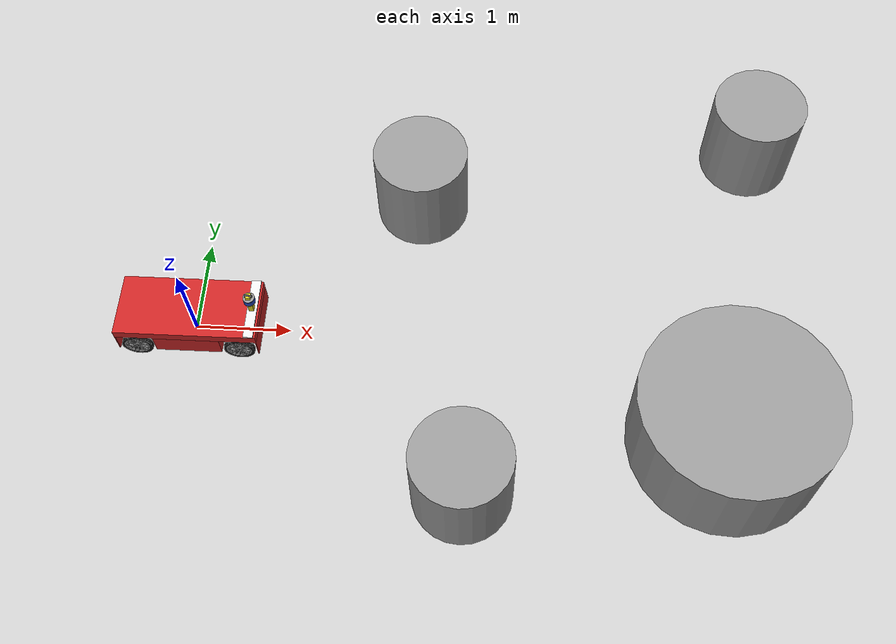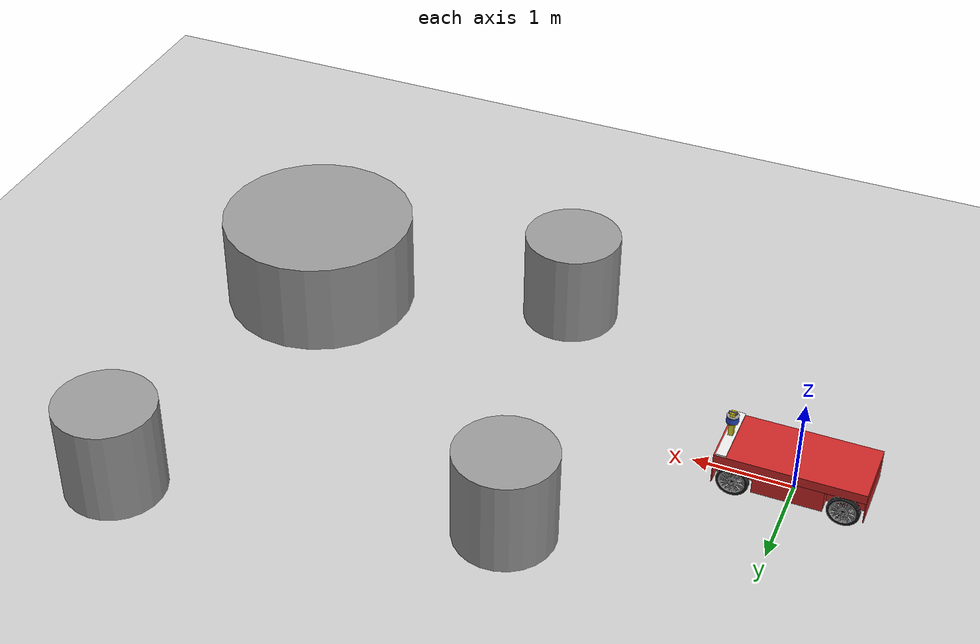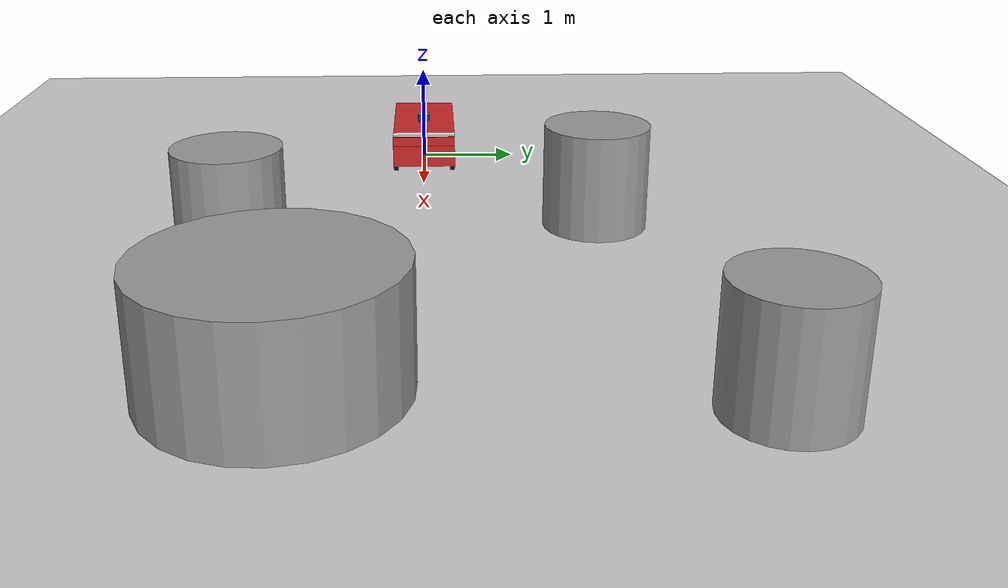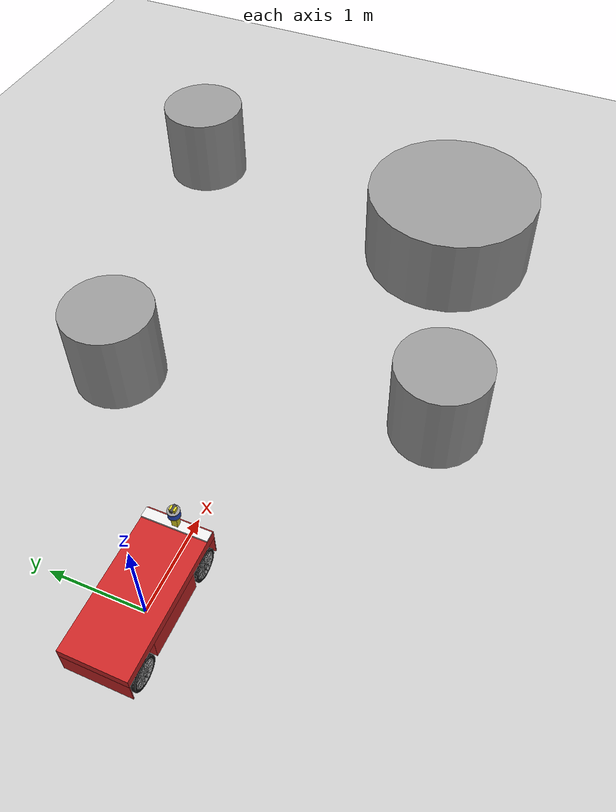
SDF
<sdf version="1.7">
 <world name="default">
  <model name="ground_plane">
   <static>1</static>
   <link name="link">
    <collision name="collision">
     <geometry><plane><normal>0 0 1</normal><size>100 100</size></plane></geometry>
     <surface><friction><ode><mu>100</mu><mu2>50</mu2></ode></friction></surface>
    </collision>
    <visual name="visual">
     <cast_shadows>0</cast_shadows>
     <geometry><plane><normal>0 0 1</normal><size>100 100</size></plane></geometry>
     <material>
      <script><uri>file://media/materials/scripts/gazebo.material</uri><name>Gazebo/Grey</name></script>
     </material>
    </visual>
   </link>
  </model>
  <model name="unit_cylinder_1">
   <pose>2.90528 -1.73743 0.499998 3e-06 -2e-06 0</pose>
   <link name="link">
    <inertial>
     <mass>1</mass>
     <inertia><ixx>0.145833</ixx><ixy>0</ixy><ixz>0</ixz><iyy>0.145833</iyy><iyz>0</iyz><izz>0.125</izz></inertia>
    </inertial>
    <collision name="collision">
     <geometry><cylinder><radius>0.5</radius><length>1</length></cylinder></geometry>
    </collision>
    <visual name="visual">
     <geometry><cylinder><radius>0.5</radius><length>1</length></cylinder></geometry>
     <material>
      <script><name>Gazebo/Grey</name><uri>file://media/materials/scripts/gazebo.material</uri></script>
     </material>
    </visual>
   </link>
  </model>
  <model name="unit_cylinder_1_clone_2">
   <pose>2.29461 1.65197 0.499991 0 -0 3.07831</pose>
   <link name="link">
    <inertial>
     <mass>1</mass>
     <inertia><ixx>0.145833</ixx><ixy>0</ixy><ixz>0</ixz><iyy>0.145833</iyy><iyz>0</iyz><izz>0.125</izz></inertia>
    </inertial>
    <collision name="collision">
     <geometry><cylinder><radius>0.5</radius><length>1</length></cylinder></geometry>
    </collision>
    <visual name="visual">
     <geometry><cylinder><radius>0.5</radius><length>1</length></cylinder></geometry>
     <material>
      <script><name>Gazebo/Grey</name><uri>file://media/materials/scripts/gazebo.material</uri></script>
     </material>
    </visual>
   </link>
  </model>
  <model name="unit_cylinder_1m_clone">
   <link name="link">
    <inertial>
     <mass>1</mass>
     <inertia><ixx>0.145833</ixx><ixy>0</ixy><ixz>0</ixz><iyy>0.145833</iyy><iyz>0</iyz><izz>0.125</izz></inertia>
    </inertial>
    <visual name="visual">
     <geometry><cylinder><radius>1</radius><length>1</length></cylinder></geometry>
     <material>
      <script><name>Gazebo/Grey</name><uri>file://media/materials/scripts/gazebo.material</uri></script>
      <shader type="pixel"><normal_map>__default__</normal_map></shader>
      <ambient>0.3 0.3 0.3 1</ambient>
      <diffuse>0.7 0.7 0.7 1</diffuse>
      <specular>0.01 0.01 0.01 1</specular>
      <emissive>0 0 0 1</emissive>
     </material>
    </visual>
    <collision name="collision">
     <geometry><cylinder><radius>1</radius><length>1</length></cylinder></geometry>
     <surface>
      <friction>
       <ode><mu>1</mu><mu2>1</mu2><fdir1>0 0 0</fdir1><slip1>0</slip1><slip2>0</slip2></ode>
       <torsional>
        <coefficient>1</coefficient>
        <patch_radius>0</patch_radius>
        <surface_radius>0</surface_radius>
        <use_patch_radius>1</use_patch_radius>
        <ode><slip>0</slip></ode>
       </torsional>
      </friction>
      <bounce><restitution_coefficient>0</restitution_coefficient><threshold>1e+06</threshold></bounce>
      <contact>
       <collide_without_contact>0</collide_without_contact>
       <collide_without_contact_bitmask>1</collide_without_contact_bitmask>
       <collide_bitmask>1</collide_bitmask>
       <ode>
        <soft_cfm>0</soft_cfm>
        <soft_erp>0.2</soft_erp>
        <kp>1e+13</kp>
        <kd>1</kd>
        <max_vel>0.01</max_vel>
        <min_depth>0</min_depth>
       </ode>
       <bullet>
        <split_impulse>1</split_impulse>
        <split_impulse_penetration_threshold>-0.01</split_impulse_penetration_threshold>
        <soft_cfm>0</soft_cfm>
        <soft_erp>0.2</soft_erp>
        <kp>1e+13</kp>
        <kd>1</kd>
       </bullet>
      </contact>
     </surface>
    </collision>
   </link>
   <static>0</static>
   <pose>5.50402 -1.03445 0.499995 -5e-06 5e-06 0.065608</pose>
  </model>
  <model name="unit_cylinder">
   <pose>5.93292 2.47551 0.499996 3e-06 1e-06 -0</pose>
   <link name="link">
    <inertial>
     <mass>1</mass>
     <inertia><ixx>0.145833</ixx><ixy>0</ixy><ixz>0</ixz><iyy>0.145833</iyy><iyz>0</iyz><izz>0.125</izz></inertia>
    </inertial>
    <collision name="collision">
     <geometry><cylinder><radius>0.5</radius><length>1</length></cylinder></geometry>
    </collision>
    <visual name="visual">
     <geometry><cylinder><radius>0.5</radius><length>1</length></cylinder></geometry>
     <material>
      <script><name>Gazebo/Grey</name><uri>file://media/materials/scripts/gazebo.material</uri></script>
     </material>
    </visual>
   </link>
  </model>
  <model name="mobile_base">
   <link name="simulation_car_center">
    <inertial>
     <pose>0.010175 0 0.010123 0 -0 0</pose>
     <mass>973</mass>
     <inertia>
      <ixx>32.4325</ixx>
      <ixy>0.01</ixy>
      <ixz>-6.39078</ixz>
      <iyy>114.856</iyy>
      <iyz>0</iyz>
      <izz>124.473</izz>
     </inertia>
    </inertial>
    <collision name="simulation_car_center_fixed_joint_lump__base_1_collision">
     <pose>0 0 0.215 0 -0 0</pose>
     <geometry><box><size>1.3 0.4 0.23</size></box></geometry>
    </collision>
    <collision name="simulation_car_center_fixed_joint_lump__gazebo_camera_link_collision_1">
     <pose>0.66 0 0.7 3.14159 1.57079 3.14159</pose>
     <geometry><cylinder><length>0.08</length><radius>0.015</radius></cylinder></geometry>
    </collision>
    <collision name="simulation_car_center_fixed_joint_lump__rsliadr_middle_collision_2">
     <pose>0.66 0 0.635 0 -0 0</pose>
     <geometry><cylinder><length>0.06</length><radius>0.06</radius></cylinder></geometry>
    </collision>
    <collision name="simulation_car_center_fixed_joint_lump__lidar_top_collision_3">
     <pose>0.66 0 0.67 0 -0 0</pose>
     <geometry><cylinder><length>0.01</length><radius>0.06</radius></cylinder></geometry>
    </collision>
    <collision name="simulation_car_center_fixed_joint_lump__lidar_down_collision_4">
     <pose>0.66 0 0.6 0 -0 0</pose>
     <geometry><cylinder><length>0.01</length><radius>0.06</radius></cylinder></geometry>
    </collision>
    <visual name="simulation_car_center_visual">
     <pose>0 0 0.215 0 -0 0</pose>
     <geometry><box><size>0.68 0.67 0.23</size></box></geometry>
     <material>
      <script><name>Gazebo/Red</name><uri>file://media/materials/scripts/gazebo.material</uri></script>
     </material>
    </visual>
    <visual name="simulation_car_center_visual_1">
     <pose>0.53 0 0.215 0 -0 0</pose>
     <geometry><box><size>0.38 0.35 0.23</size></box></geometry>
     <material>
      <script><name>Gazebo/Red</name><uri>file://media/materials/scripts/gazebo.material</uri></script>
     </material>
    </visual>
    <visual name="simulation_car_center_visual_2">
     <pose>-0.53 0 0.215 0 -0 0</pose>
     <geometry><box><size>0.38 0.35 0.23</size></box></geometry>
     <material>
      <script><name>Gazebo/Red</name><uri>file://media/materials/scripts/gazebo.material</uri></script>
     </material>
    </visual>
    <visual name="simulation_car_center_visual_3">
     <pose>-0.725 0 0.215 0 -0 0</pose>
     <geometry><box><size>0.01 0.67 0.23</size></box></geometry>
     <material>
      <script><name>Gazebo/Red</name><uri>file://media/materials/scripts/gazebo.material</uri></script>
     </material>
    </visual>
    <visual name="simulation_car_center_visual_4">
     <pose>-0.725 0 0.215 0 -0 0</pose>
     <geometry><box><size>0.01 0.67 0.23</size></box></geometry>
     <material>
      <script><name>Gazebo/Red</name><uri>file://media/materials/scripts/gazebo.material</uri></script>
     </material>
    </visual>
    <visual name="simulation_car_center_visual_5">
     <pose>0 0 0.38 0 -0 0</pose>
     <geometry><box><size>1.46 0.67 0.1</size></box></geometry>
     <material>
      <script><name>Gazebo/Red</name><uri>file://media/materials/scripts/gazebo.material</uri></script>
     </material>
    </visual>
    <visual name="simulation_car_center_visual_6">
     <pose>0.725 0 0.215 0 -0 0</pose>
     <geometry><box><size>0.01 0.67 0.23</size></box></geometry>
     <material>
      <script><name>Gazebo/Red</name><uri>file://media/materials/scripts/gazebo.material</uri></script>
     </material>
    </visual>
    <visual name="simulation_car_center_fixed_joint_lump__gazebo_camera_link_visual_7">
     <pose>0.66 0 0.7 3.14159 1.57079 3.14159</pose>
     <geometry><cylinder><length>0.08</length><radius>0.015</radius></cylinder></geometry>
     <material>
      <script><name>Gazebo/DarkGrey</name><uri>file://media/materials/scripts/gazebo.material</uri></script>
     </material>
    </visual>
    <visual name="simulation_car_center_fixed_joint_lump__gazebo_lidar_visual_8">
     <pose>0.66 0 0.635 0 -0 0</pose>
     <geometry><cylinder><length>0.06</length><radius>0.06</radius></cylinder></geometry>
     <material>
      <script><name>Gazebo/Blue</name><uri>file://media/materials/scripts/gazebo.material</uri></script>
     </material>
    </visual>
    <visual name="simulation_car_center_fixed_joint_lump__lidar_top_base_visual_9">
     <pose>0.66 0 0.67 0 -0 0</pose>
     <geometry><cylinder><length>0.01</length><radius>0.06</radius></cylinder></geometry>
     <material>
      <script><name>Gazebo/Grey</name><uri>file://media/materials/scripts/gazebo.material</uri></script>
     </material>
    </visual>
    <visual name="simulation_car_center_fixed_joint_lump__lidar_top_base_visual_10">
     <pose>0.66 0 0.6 0 -0 0</pose>
     <geometry><cylinder><length>0.01</length><radius>0.06</radius></cylinder></geometry>
     <material>
      <script><name>Gazebo/Grey</name><uri>file://media/materials/scripts/gazebo.material</uri></script>
     </material>
    </visual>
    <visual name="simulation_car_center_fixed_joint_lump__sensor_link_visual_11">
     <pose>0.66 0 0.57 0 -0 0</pose>
     <geometry><box><size>0.05 0.06 0.28</size></box></geometry>
     <material>
      <script><name>Gazebo/Yellow</name><uri>file://media/materials/scripts/gazebo.material</uri></script>
     </material>
    </visual>
    <visual name="simulation_car_center_fixed_joint_lump__show_front_link_visual_12">
     <pose>0.66 0 0.44 0 -0 0</pose>
     <geometry><box><size>0.1 0.67 0.02</size></box></geometry>
     <material>
      <script><name>Gazebo/White</name><uri>file://media/materials/scripts/gazebo.material</uri></script>
     </material>
    </visual>
    <sensor name="gazebo_ros_head_hokuyo_sensor" type="gpu_ray">
     <visualize>0</visualize>
     <update_rate>20</update_rate>
     <ray>
      <scan>
       <horizontal>
        <samples>2880</samples>
        <resolution>1</resolution>
        <min_angle>-3.14159</min_angle>
        <max_angle>3.14159</max_angle>
       </horizontal>
       <vertical>
        <samples>32</samples>
        <resolution>1</resolution>
        <min_angle>-0.436332</min_angle>
        <max_angle>0.261799</max_angle>
       </vertical>
      </scan>
      <range><min>0.1</min><max>130</max><resolution>0.001</resolution></range>
      <noise><type>gaussian</type><mean>0</mean><stddev>0</stddev></noise>
     </ray>
     <plugin name="gazebo_ros_head_hokuyo_controller" filename="libgazebo_ros_velodyne_gpu_laser.so">
      <topicName>velodyne_points</topicName>
      <frameName>velodyne</frameName>
      <robotNamespace>/</robotNamespace>
     </plugin>
     <pose>0.66 0 0.635 0 -0 0</pose>
    </sensor>
   </link>
   <joint name="front_left_steering_joint" type="revolute">
    <pose relative_to="simulation_car_center">0.53 0.31 0.16 0 -0 0</pose>
    <parent>simulation_car_center</parent>
    <child>front_left_steering_link</child>
    <axis>
     <xyz>0 0 1</xyz>
     <limit><lower>-0.8</lower><upper>0.8</upper><effort>1e+06</effort><velocity>10000</velocity></limit>
     <dynamics>
      <damping>10</damping>
      <friction>0</friction>
      <spring_reference>0</spring_reference>
      <spring_stiffness>0</spring_stiffness>
     </dynamics>
    </axis>
   </joint>
   <link name="front_left_steering_link">
    <pose relative_to="front_left_steering_joint">0 0 0 0 -0 0</pose>
    <inertial>
     <mass>5</mass>
     <inertia><ixx>0</ixx><ixy>0</ixy><ixz>0</ixz><iyy>0</iyy><iyz>0</iyz><izz>0</izz></inertia>
    </inertial>
    <visual name="front_left_steering_link_visual">
     <pose>0 0 0 1.5708 -0 0</pose>
     <geometry><cylinder><length>0.01</length><radius>0.05</radius></cylinder></geometry>
    </visual>
   </link>
   <joint name="front_left_wheel_joint" type="revolute">
    <pose relative_to="front_left_steering_link">0 0 0 0 -0 0</pose>
    <parent>front_left_steering_link</parent>
    <child>front_left_wheel_link</child>
    <axis>
     <xyz>0 1 0</xyz>
     <limit><effort>1e+06</effort><velocity>10000</velocity><lower>-1e+16</lower><upper>1e+16</upper></limit>
     <dynamics>
      <damping>0.1</damping>
      <friction>0</friction>
      <spring_reference>0</spring_reference>
      <spring_stiffness>0</spring_stiffness>
     </dynamics>
    </axis>
   </joint>
   <link name="front_left_wheel_link">
    <pose relative_to="front_left_wheel_joint">0 0 0 0 -0 0</pose>
    <inertial>
     <mass>10</mass>
     <inertia><ixx>0</ixx><ixy>0</ixy><ixz>0</ixz><iyy>0</iyy><iyz>0</iyz><izz>0</izz></inertia>
    </inertial>
    <collision name="front_left_wheel_link_collision">
     <pose>0 0 0 1.5708 -0 0</pose>
     <geometry><cylinder><length>0.05</length><radius>0.16</radius></cylinder></geometry>
     <surface>
      <contact><ode><kp>1e+08</kp><kd>1</kd><max_vel>100</max_vel><min_depth>0</min_depth></ode></contact>
      <friction><ode><mu>1e+07</mu><mu2>1e+07</mu2></ode></friction>
     </surface>
    </collision>
    <visual name="front_left_wheel_link_visual">
     <pose>0 0 0 0 -0 1.5708</pose>
     <geometry>
      <mesh>
       <scale>1 1 1</scale>
       <uri>/home/ye/plan/op_plannersrc/src/trajectory_planning/simulation_env/car_model/meshes/wheel.dae</uri>
      </mesh>
     </geometry>
    </visual>
   </link>
   <joint name="front_right_steering_joint" type="revolute">
    <pose relative_to="simulation_car_center">0.53 -0.31 0.16 0 -0 0</pose>
    <parent>simulation_car_center</parent>
    <child>front_right_steering_link</child>
    <axis>
     <xyz>0 0 1</xyz>
     <limit><lower>-0.8</lower><upper>0.8</upper><effort>1e+06</effort><velocity>10000</velocity></limit>
     <dynamics>
      <damping>10</damping>
      <friction>0</friction>
      <spring_reference>0</spring_reference>
      <spring_stiffness>0</spring_stiffness>
     </dynamics>
    </axis>
   </joint>
   <link name="front_right_steering_link">
    <pose relative_to="front_right_steering_joint">0 0 0 0 -0 0</pose>
    <inertial>
     <mass>5</mass>
     <inertia><ixx>0</ixx><ixy>0</ixy><ixz>0</ixz><iyy>0</iyy><iyz>0</iyz><izz>0</izz></inertia>
    </inertial>
    <visual name="front_right_steering_link_visual">
     <pose>0 0 0 1.5708 -0 0</pose>
     <geometry><cylinder><length>0.01</length><radius>0.05</radius></cylinder></geometry>
    </visual>
   </link>
   <joint name="front_right_wheel_joint" type="revolute">
    <pose relative_to="front_right_steering_link">0 0 0 0 -0 0</pose>
    <parent>front_right_steering_link</parent>
    <child>front_right_wheel_link</child>
    <axis>
     <xyz>0 1 0</xyz>
     <limit><effort>1e+06</effort><velocity>10000</velocity><lower>-1e+16</lower><upper>1e+16</upper></limit>
     <dynamics>
      <damping>0.1</damping>
      <friction>0</friction>
      <spring_reference>0</spring_reference>
      <spring_stiffness>0</spring_stiffness>
     </dynamics>
    </axis>
   </joint>
   <link name="front_right_wheel_link">
    <pose relative_to="front_right_wheel_joint">0 0 0 0 -0 0</pose>
    <inertial>
     <mass>10</mass>
     <inertia><ixx>0</ixx><ixy>0</ixy><ixz>0</ixz><iyy>0</iyy><iyz>0</iyz><izz>0</izz></inertia>
    </inertial>
    <collision name="front_right_wheel_link_collision">
     <pose>0 0 0 1.5708 -0 0</pose>
     <geometry><cylinder><length>0.05</length><radius>0.16</radius></cylinder></geometry>
     <surface>
      <contact><ode><kp>1e+08</kp><kd>1</kd><max_vel>100</max_vel><min_depth>0</min_depth></ode></contact>
      <friction><ode><mu>1e+07</mu><mu2>1e+07</mu2></ode></friction>
     </surface>
    </collision>
    <visual name="front_right_wheel_link_visual">
     <pose>0 0 0 0 0 -1.5708</pose>
     <geometry>
      <mesh>
       <scale>1 1 1</scale>
       <uri>/home/ye/plan/op_plannersrc/src/trajectory_planning/simulation_env/car_model/meshes/wheel.dae</uri>
      </mesh>
     </geometry>
    </visual>
   </link>
   <joint name="rear_left_steering_joint" type="revolute">
    <pose relative_to="simulation_car_center">-0.53 0.31 0.16 0 -0 0</pose>
    <parent>simulation_car_center</parent>
    <child>rear_left_steering_link</child>
    <axis>
     <xyz>0 0 1</xyz>
     <limit><lower>-0.8</lower><upper>0.8</upper><effort>1e+06</effort><velocity>10000</velocity></limit>
     <dynamics>
      <damping>10</damping>
      <friction>0</friction>
      <spring_reference>0</spring_reference>
      <spring_stiffness>0</spring_stiffness>
     </dynamics>
    </axis>
   </joint>
   <link name="rear_left_steering_link">
    <pose relative_to="rear_left_steering_joint">0 0 0 0 -0 0</pose>
    <inertial>
     <mass>5</mass>
     <inertia><ixx>0</ixx><ixy>0</ixy><ixz>0</ixz><iyy>0</iyy><iyz>0</iyz><izz>0</izz></inertia>
    </inertial>
    <visual name="rear_left_steering_link_visual">
     <pose>0 0 0 1.5708 -0 0</pose>
     <geometry><cylinder><length>0.01</length><radius>0.05</radius></cylinder></geometry>
    </visual>
   </link>
   <joint name="rear_left_wheel_joint" type="revolute">
    <pose relative_to="rear_left_steering_link">0 0 0 0 -0 0</pose>
    <parent>rear_left_steering_link</parent>
    <child>rear_left_wheel_link</child>
    <axis>
     <xyz>0 1 0</xyz>
     <limit><effort>1e+06</effort><velocity>10000</velocity><lower>-1e+16</lower><upper>1e+16</upper></limit>
     <dynamics>
      <damping>0.1</damping>
      <friction>0</friction>
      <spring_reference>0</spring_reference>
      <spring_stiffness>0</spring_stiffness>
     </dynamics>
    </axis>
   </joint>
   <link name="rear_left_wheel_link">
    <pose relative_to="rear_left_wheel_joint">0 0 0 0 -0 0</pose>
    <inertial>
     <mass>10</mass>
     <inertia><ixx>0</ixx><ixy>0</ixy><ixz>0</ixz><iyy>0</iyy><iyz>0</iyz><izz>0</izz></inertia>
    </inertial>
    <collision name="rear_left_wheel_link_collision">
     <pose>0 0 0 1.5708 -0 0</pose>
     <geometry><cylinder><length>0.05</length><radius>0.16</radius></cylinder></geometry>
     <surface>
      <contact><ode><kp>1e+08</kp><kd>1</kd><max_vel>100</max_vel><min_depth>0</min_depth></ode></contact>
      <friction><ode><mu>1e+07</mu><mu2>1e+07</mu2></ode></friction>
     </surface>
    </collision>
    <visual name="rear_left_wheel_link_visual">
     <pose>0 0 0 0 -0 1.5708</pose>
     <geometry>
      <mesh>
       <scale>1 1 1</scale>
       <uri>/home/ye/plan/op_plannersrc/src/trajectory_planning/simulation_env/car_model/meshes/wheel.dae</uri>
      </mesh>
     </geometry>
    </visual>
   </link>
   <joint name="rear_right_steering_joint" type="revolute">
    <pose relative_to="simulation_car_center">-0.53 -0.31 0.16 0 -0 0</pose>
    <parent>simulation_car_center</parent>
    <child>rear_right_steering_link</child>
    <axis>
     <xyz>0 0 1</xyz>
     <limit><lower>-0.8</lower><upper>0.8</upper><effort>1e+06</effort><velocity>10000</velocity></limit>
     <dynamics>
      <damping>10</damping>
      <friction>0</friction>
      <spring_reference>0</spring_reference>
      <spring_stiffness>0</spring_stiffness>
     </dynamics>
    </axis>
   </joint>
   <link name="rear_right_steering_link">
    <pose relative_to="rear_right_steering_joint">0 0 0 0 -0 0</pose>
    <inertial>
     <mass>5</mass>
     <inertia><ixx>0</ixx><ixy>0</ixy><ixz>0</ixz><iyy>0</iyy><iyz>0</iyz><izz>0</izz></inertia>
    </inertial>
    <visual name="rear_right_steering_link_visual">
     <pose>0 0 0 1.5708 -0 0</pose>
     <geometry><cylinder><length>0.01</length><radius>0.05</radius></cylinder></geometry>
    </visual>
   </link>
   <joint name="rear_right_wheel_joint" type="revolute">
    <pose relative_to="rear_right_steering_link">0 0 0 0 -0 0</pose>
    <parent>rear_right_steering_link</parent>
    <child>rear_right_wheel_link</child>
    <axis>
     <xyz>0 1 0</xyz>
     <limit><effort>1e+06</effort><velocity>10000</velocity><lower>-1e+16</lower><upper>1e+16</upper></limit>
     <dynamics>
      <damping>0.1</damping>
      <friction>0</friction>
      <spring_reference>0</spring_reference>
      <spring_stiffness>0</spring_stiffness>
     </dynamics>
    </axis>
   </joint>
   <link name="rear_right_wheel_link">
    <pose relative_to="rear_right_wheel_joint">0 0 0 0 -0 0</pose>
    <inertial>
     <mass>10</mass>
     <inertia><ixx>0</ixx><ixy>0</ixy><ixz>0</ixz><iyy>0</iyy><iyz>0</iyz><izz>0</izz></inertia>
    </inertial>
    <collision name="rear_right_wheel_link_collision">
     <pose>0 0 0 1.5708 -0 0</pose>
     <geometry><cylinder><length>0.05</length><radius>0.16</radius></cylinder></geometry>
     <surface>
      <contact><ode><kp>1e+08</kp><kd>1</kd><max_vel>100</max_vel><min_depth>0</min_depth></ode></contact>
      <friction><ode><mu>1e+07</mu><mu2>1e+07</mu2></ode></friction>
     </surface>
    </collision>
    <visual name="rear_right_wheel_link_visual">
     <pose>0 0 0 0 0 -1.5708</pose>
     <geometry>
      <mesh>
       <scale>1 1 1</scale>
       <uri>/home/ye/plan/op_plannersrc/src/trajectory_planning/simulation_env/car_model/meshes/wheel.dae</uri>
      </mesh>
     </geometry>
    </visual>
   </link>
   <plugin name="gazebo_ros_control" filename="libgazebo_ros_control.so">
    <robotNamespace>/mobile_base</robotNamespace>
    <robotParam>robot_description</robotParam>
    <robotSimType>gazebo_ros_control/DefaultRobotHWSim</robotSimType>
    <legacyModeNS>1</legacyModeNS>
   </plugin>
   <static>0</static>
   <plugin name="joint_state_publisher" filename="libgazebo_ros_joint_state_publisher.so">
    <jointName>rear_left_wheel_joint, rear_right_wheel_joint, front_left_steering_joint, front_right_steering_joint, front_right_wheel_joint, front_left_wheel_joint, rear_right_steering_joint, rear_left_steering_joint</jointName>
    <updateRate>50.0</updateRate>
    <robotNamespace>/mobile_base</robotNamespace>
    <alwaysOn>1</alwaysOn>
    <legacyModeNS>1</legacyModeNS>
   </plugin>
   <pose>0.000198 3e-06 -1.7e-05 -1e-06 -0 1e-06</pose>
  </model>
 </world>
</sdf>
